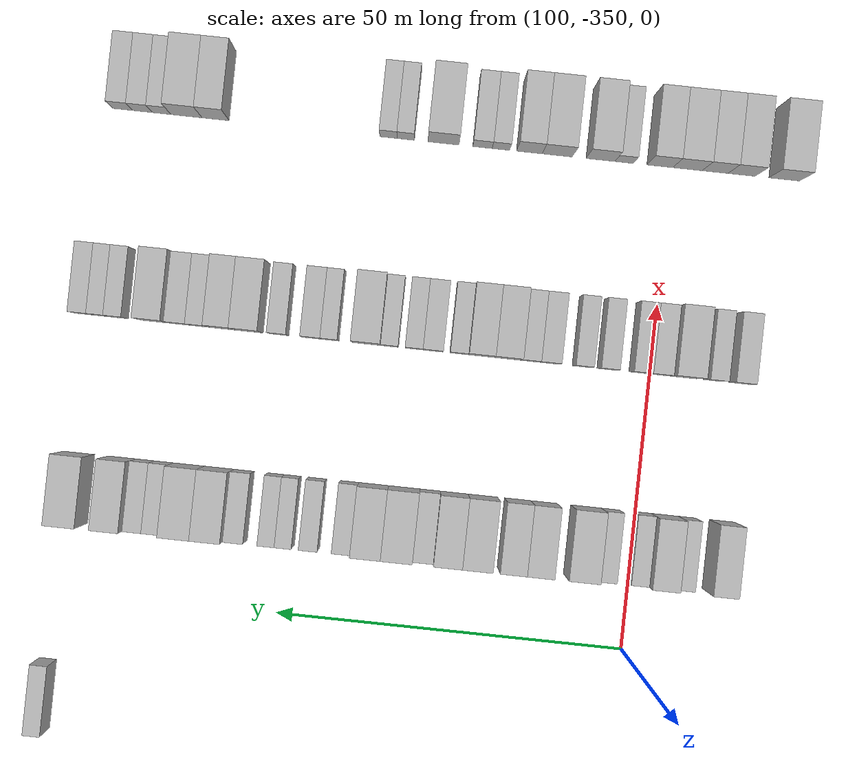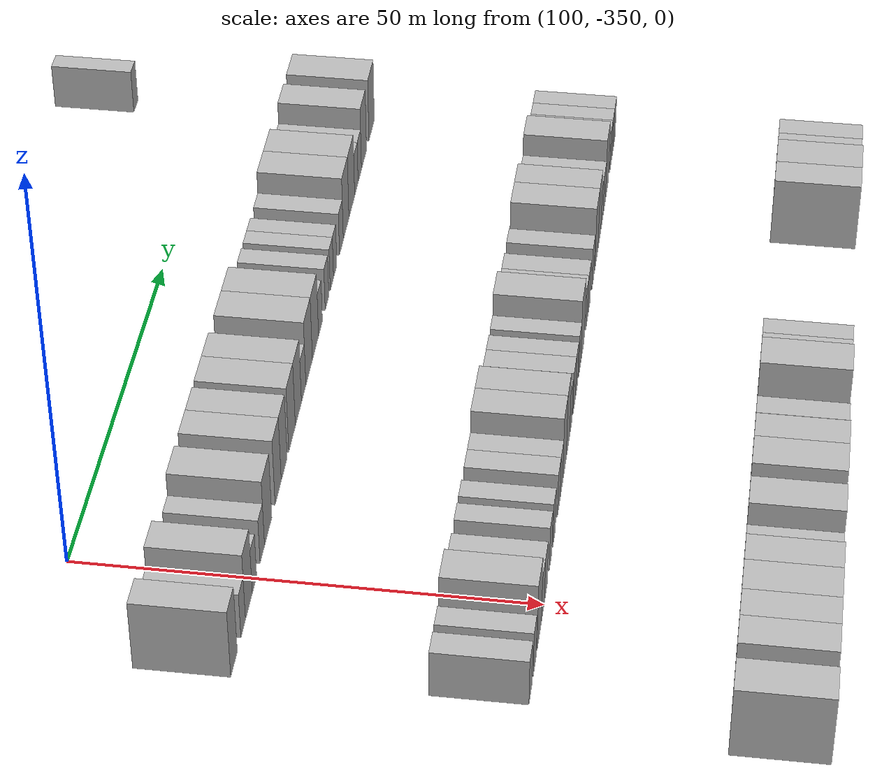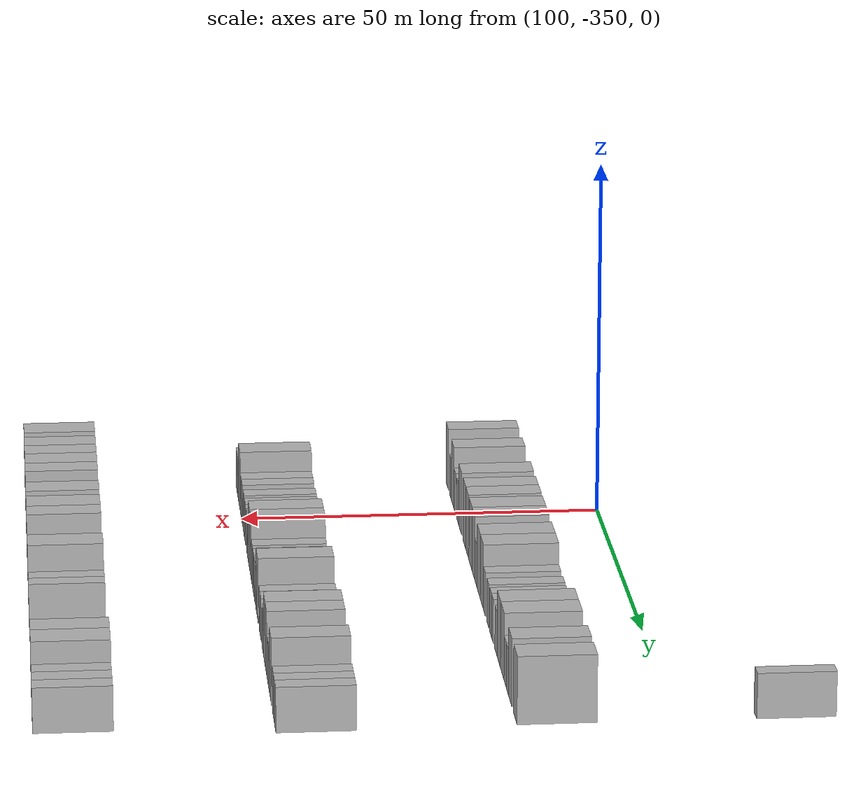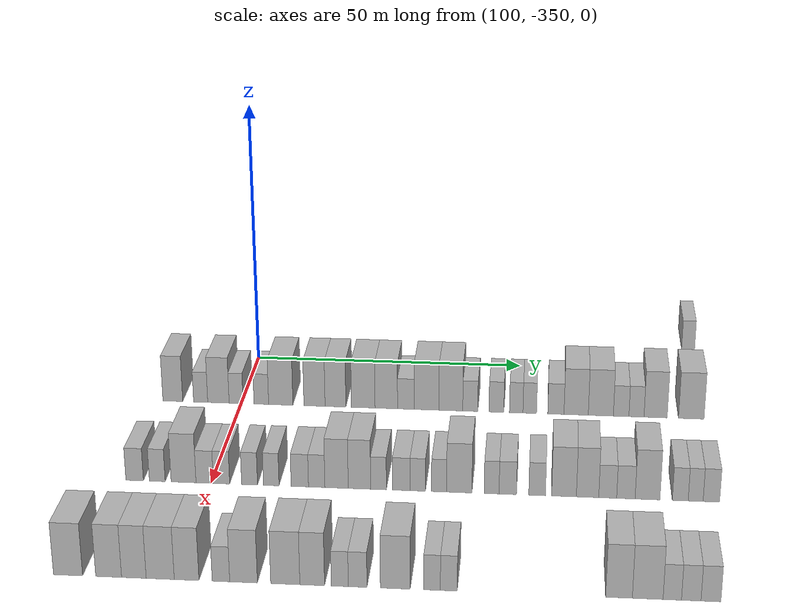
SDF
<sdf version="1.6">
 <world name="default">
  <model name="building_497">
   <static>1</static>
   <pose>85.0000 -267.8588 0 0.000000 0.000000 0.000000</pose>
   <link name="link">
    <pose>0 0 3.00 0 0 0</pose>
    <collision name="collision"><geometry><box><size>10.0000 2.4910 6.0000</size></box></geometry></collision>
    <visual name="visual">
     <cast_shadows>0</cast_shadows>
     <geometry><box><size>10.0000 2.4910 6.0000</size></box></geometry>
     <material>
      <script>
       <uri>model://HANNAS_wall/materials/scripts</uri>
       <uri>model://HANNAS_wall/materials/textures</uri>
       <name>vrc/HANNAS_wall</name>
      </script>
     </material>
    </visual>
   </link>
  </model>
  <model name="building_700">
   <static>1</static>
   <pose>115.0000 -362.5337 0 0.000000 0.000000 0.000000</pose>
   <link name="link">
    <pose>0 0 4.50 0 0 0</pose>
    <collision name="collision"><geometry><box><size>10.0000 3.6309 9.0000</size></box></geometry></collision>
    <visual name="visual">
     <cast_shadows>0</cast_shadows>
     <geometry><box><size>10.0000 3.6309 9.0000</size></box></geometry>
     <material>
      <script>
       <uri>model://HANNAS_wall/materials/scripts</uri>
       <uri>model://HANNAS_wall/materials/textures</uri>
       <name>vrc/HANNAS_wall</name>
      </script>
     </material>
    </visual>
   </link>
  </model>
  <model name="building_701">
   <static>1</static>
   <pose>115.0000 -357.4269 0 0.000000 0.000000 0.000000</pose>
   <link name="link">
    <pose>0 0 3.00 0 0 0</pose>
    <collision name="collision"><geometry><box><size>10.0000 2.5826 6.0000</size></box></geometry></collision>
    <visual name="visual">
     <cast_shadows>0</cast_shadows>
     <geometry><box><size>10.0000 2.5826 6.0000</size></box></geometry>
     <material>
      <script>
       <uri>model://HANNAS_wall/materials/scripts</uri>
       <uri>model://HANNAS_wall/materials/textures</uri>
       <name>vrc/HANNAS_wall</name>
      </script>
     </material>
    </visual>
   </link>
  </model>
  <model name="building_702">
   <static>1</static>
   <pose>115.0000 -354.1775 0 0.000000 0.000000 0.000000</pose>
   <link name="link">
    <pose>0 0 4.50 0 0 0</pose>
    <collision name="collision"><geometry><box><size>10.0000 3.9162 9.0000</size></box></geometry></collision>
    <visual name="visual">
     <cast_shadows>0</cast_shadows>
     <geometry><box><size>10.0000 3.9162 9.0000</size></box></geometry>
     <material>
      <script>
       <uri>model://HANNAS_wall/materials/scripts</uri>
       <uri>model://HANNAS_wall/materials/textures</uri>
       <name>vrc/HANNAS_wall</name>
      </script>
     </material>
    </visual>
   </link>
  </model>
  <model name="building_703">
   <static>1</static>
   <pose>115.0000 -350.9429 0 0.000000 0.000000 0.000000</pose>
   <link name="link">
    <pose>0 0 3.00 0 0 0</pose>
    <collision name="collision"><geometry><box><size>10.0000 2.5531 6.0000</size></box></geometry></collision>
    <visual name="visual">
     <cast_shadows>0</cast_shadows>
     <geometry><box><size>10.0000 2.5531 6.0000</size></box></geometry>
     <material>
      <script>
       <uri>model://HANNAS_wall/materials/scripts</uri>
       <uri>model://HANNAS_wall/materials/textures</uri>
       <name>vrc/HANNAS_wall</name>
      </script>
     </material>
    </visual>
   </link>
  </model>
  <model name="building_704">
   <static>1</static>
   <pose>115.0000 -346.3352 0 0.000000 0.000000 0.000000</pose>
   <link name="link">
    <pose>0 0 3.00 0 0 0</pose>
    <collision name="collision"><geometry><box><size>10.0000 2.6622 6.0000</size></box></geometry></collision>
    <visual name="visual">
     <cast_shadows>0</cast_shadows>
     <geometry><box><size>10.0000 2.6622 6.0000</size></box></geometry>
     <material>
      <script>
       <uri>model://HANNAS_wall/materials/scripts</uri>
       <uri>model://HANNAS_wall/materials/textures</uri>
       <name>vrc/HANNAS_wall</name>
      </script>
     </material>
    </visual>
   </link>
  </model>
  <model name="building_705">
   <static>1</static>
   <pose>115.0000 -342.7919 0 0.000000 0.000000 0.000000</pose>
   <link name="link">
    <pose>0 0 4.50 0 0 0</pose>
    <collision name="collision"><geometry><box><size>10.0000 4.4244 9.0000</size></box></geometry></collision>
    <visual name="visual">
     <cast_shadows>0</cast_shadows>
     <geometry><box><size>10.0000 4.4244 9.0000</size></box></geometry>
     <material>
      <script>
       <uri>model://HANNAS_wall/materials/scripts</uri>
       <uri>model://HANNAS_wall/materials/textures</uri>
       <name>vrc/HANNAS_wall</name>
      </script>
     </material>
    </visual>
   </link>
  </model>
  <model name="building_706">
   <static>1</static>
   <pose>115.0000 -336.6595 0 0.000000 0.000000 0.000000</pose>
   <link name="link">
    <pose>0 0 4.50 0 0 0</pose>
    <collision name="collision"><geometry><box><size>10.0000 3.8402 9.0000</size></box></geometry></collision>
    <visual name="visual">
     <cast_shadows>0</cast_shadows>
     <geometry><box><size>10.0000 3.8402 9.0000</size></box></geometry>
     <material>
      <script>
       <uri>model://HANNAS_wall/materials/scripts</uri>
       <uri>model://HANNAS_wall/materials/textures</uri>
       <name>vrc/HANNAS_wall</name>
      </script>
     </material>
    </visual>
   </link>
  </model>
  <model name="building_707">
   <static>1</static>
   <pose>115.0000 -332.8523 0 0.000000 0.000000 0.000000</pose>
   <link name="link">
    <pose>0 0 4.50 0 0 0</pose>
    <collision name="collision"><geometry><box><size>10.0000 3.7743 9.0000</size></box></geometry></collision>
    <visual name="visual">
     <cast_shadows>0</cast_shadows>
     <geometry><box><size>10.0000 3.7743 9.0000</size></box></geometry>
     <material>
      <script>
       <uri>model://HANNAS_wall/materials/scripts</uri>
       <uri>model://HANNAS_wall/materials/textures</uri>
       <name>vrc/HANNAS_wall</name>
      </script>
     </material>
    </visual>
   </link>
  </model>
  <model name="building_708">
   <static>1</static>
   <pose>115.0000 -327.8278 0 0.000000 0.000000 0.000000</pose>
   <link name="link">
    <pose>0 0 4.50 0 0 0</pose>
    <collision name="collision"><geometry><box><size>10.0000 4.2747 9.0000</size></box></geometry></collision>
    <visual name="visual">
     <cast_shadows>0</cast_shadows>
     <geometry><box><size>10.0000 4.2747 9.0000</size></box></geometry>
     <material>
      <script>
       <uri>model://HANNAS_wall/materials/scripts</uri>
       <uri>model://HANNAS_wall/materials/textures</uri>
       <name>vrc/HANNAS_wall</name>
      </script>
     </material>
    </visual>
   </link>
  </model>
  <model name="building_709">
   <static>1</static>
   <pose>115.0000 -323.6613 0 0.000000 0.000000 0.000000</pose>
   <link name="link">
    <pose>0 0 4.50 0 0 0</pose>
    <collision name="collision"><geometry><box><size>10.0000 4.0583 9.0000</size></box></geometry></collision>
    <visual name="visual">
     <cast_shadows>0</cast_shadows>
     <geometry><box><size>10.0000 4.0583 9.0000</size></box></geometry>
     <material>
      <script>
       <uri>model://HANNAS_wall/materials/scripts</uri>
       <uri>model://HANNAS_wall/materials/textures</uri>
       <name>vrc/HANNAS_wall</name>
      </script>
     </material>
    </visual>
   </link>
  </model>
  <model name="building_710">
   <static>1</static>
   <pose>115.0000 -320.1478 0 0.000000 0.000000 0.000000</pose>
   <link name="link">
    <pose>0 0 3.00 0 0 0</pose>
    <collision name="collision"><geometry><box><size>10.0000 2.9687 6.0000</size></box></geometry></collision>
    <visual name="visual">
     <cast_shadows>0</cast_shadows>
     <geometry><box><size>10.0000 2.9687 6.0000</size></box></geometry>
     <material>
      <script>
       <uri>model://HANNAS_wall/materials/scripts</uri>
       <uri>model://HANNAS_wall/materials/textures</uri>
       <name>vrc/HANNAS_wall</name>
      </script>
     </material>
    </visual>
   </link>
  </model>
  <model name="building_711">
   <static>1</static>
   <pose>115.0000 -316.4246 0 0.000000 0.000000 0.000000</pose>
   <link name="link">
    <pose>0 0 4.50 0 0 0</pose>
    <collision name="collision"><geometry><box><size>10.0000 4.4778 9.0000</size></box></geometry></collision>
    <visual name="visual">
     <cast_shadows>0</cast_shadows>
     <geometry><box><size>10.0000 4.4778 9.0000</size></box></geometry>
     <material>
      <script>
       <uri>model://HANNAS_wall/materials/scripts</uri>
       <uri>model://HANNAS_wall/materials/textures</uri>
       <name>vrc/HANNAS_wall</name>
      </script>
     </material>
    </visual>
   </link>
  </model>
  <model name="building_712">
   <static>1</static>
   <pose>115.0000 -312.0358 0 0.000000 0.000000 0.000000</pose>
   <link name="link">
    <pose>0 0 4.50 0 0 0</pose>
    <collision name="collision"><geometry><box><size>10.0000 4.2998 9.0000</size></box></geometry></collision>
    <visual name="visual">
     <cast_shadows>0</cast_shadows>
     <geometry><box><size>10.0000 4.2998 9.0000</size></box></geometry>
     <material>
      <script>
       <uri>model://HANNAS_wall/materials/scripts</uri>
       <uri>model://HANNAS_wall/materials/textures</uri>
       <name>vrc/HANNAS_wall</name>
      </script>
     </material>
    </visual>
   </link>
  </model>
  <model name="building_713">
   <static>1</static>
   <pose>115.0000 -308.5338 0 0.000000 0.000000 0.000000</pose>
   <link name="link">
    <pose>0 0 3.00 0 0 0</pose>
    <collision name="collision"><geometry><box><size>10.0000 2.7042 6.0000</size></box></geometry></collision>
    <visual name="visual">
     <cast_shadows>0</cast_shadows>
     <geometry><box><size>10.0000 2.7042 6.0000</size></box></geometry>
     <material>
      <script>
       <uri>model://HANNAS_wall/materials/scripts</uri>
       <uri>model://HANNAS_wall/materials/textures</uri>
       <name>vrc/HANNAS_wall</name>
      </script>
     </material>
    </visual>
   </link>
  </model>
  <model name="building_714">
   <static>1</static>
   <pose>115.0000 -303.8500 0 0.000000 0.000000 0.000000</pose>
   <link name="link">
    <pose>0 0 3.00 0 0 0</pose>
    <collision name="collision"><geometry><box><size>10.0000 2.6634 6.0000</size></box></geometry></collision>
    <visual name="visual">
     <cast_shadows>0</cast_shadows>
     <geometry><box><size>10.0000 2.6634 6.0000</size></box></geometry>
     <material>
      <script>
       <uri>model://HANNAS_wall/materials/scripts</uri>
       <uri>model://HANNAS_wall/materials/textures</uri>
       <name>vrc/HANNAS_wall</name>
      </script>
     </material>
    </visual>
   </link>
  </model>
  <model name="building_715">
   <static>1</static>
   <pose>115.0000 -300.3107 0 0.000000 0.000000 0.000000</pose>
   <link name="link">
    <pose>0 0 3.00 0 0 0</pose>
    <collision name="collision"><geometry><box><size>10.0000 2.4151 6.0000</size></box></geometry></collision>
    <visual name="visual">
     <cast_shadows>0</cast_shadows>
     <geometry><box><size>10.0000 2.4151 6.0000</size></box></geometry>
     <material>
      <script>
       <uri>model://HANNAS_wall/materials/scripts</uri>
       <uri>model://HANNAS_wall/materials/textures</uri>
       <name>vrc/HANNAS_wall</name>
      </script>
     </material>
    </visual>
   </link>
  </model>
  <model name="building_716">
   <static>1</static>
   <pose>115.0000 -297.8866 0 0.000000 0.000000 0.000000</pose>
   <link name="link">
    <pose>0 0 3.00 0 0 0</pose>
    <collision name="collision"><geometry><box><size>10.0000 2.4331 6.0000</size></box></geometry></collision>
    <visual name="visual">
     <cast_shadows>0</cast_shadows>
     <geometry><box><size>10.0000 2.4331 6.0000</size></box></geometry>
     <material>
      <script>
       <uri>model://HANNAS_wall/materials/scripts</uri>
       <uri>model://HANNAS_wall/materials/textures</uri>
       <name>vrc/HANNAS_wall</name>
      </script>
     </material>
    </visual>
   </link>
  </model>
  <model name="building_717">
   <static>1</static>
   <pose>115.0000 -293.2284 0 0.000000 0.000000 0.000000</pose>
   <link name="link">
    <pose>0 0 3.00 0 0 0</pose>
    <collision name="collision"><geometry><box><size>10.0000 2.8833 6.0000</size></box></geometry></collision>
    <visual name="visual">
     <cast_shadows>0</cast_shadows>
     <geometry><box><size>10.0000 2.8833 6.0000</size></box></geometry>
     <material>
      <script>
       <uri>model://HANNAS_wall/materials/scripts</uri>
       <uri>model://HANNAS_wall/materials/textures</uri>
       <name>vrc/HANNAS_wall</name>
      </script>
     </material>
    </visual>
   </link>
  </model>
  <model name="building_718">
   <static>1</static>
   <pose>115.0000 -289.6238 0 0.000000 0.000000 0.000000</pose>
   <link name="link">
    <pose>0 0 4.50 0 0 0</pose>
    <collision name="collision"><geometry><box><size>10.0000 4.3260 9.0000</size></box></geometry></collision>
    <visual name="visual">
     <cast_shadows>0</cast_shadows>
     <geometry><box><size>10.0000 4.3260 9.0000</size></box></geometry>
     <material>
      <script>
       <uri>model://HANNAS_wall/materials/scripts</uri>
       <uri>model://HANNAS_wall/materials/textures</uri>
       <name>vrc/HANNAS_wall</name>
      </script>
     </material>
    </visual>
   </link>
  </model>
  <model name="building_719">
   <static>1</static>
   <pose>115.0000 -285.2322 0 0.000000 0.000000 0.000000</pose>
   <link name="link">
    <pose>0 0 4.50 0 0 0</pose>
    <collision name="collision"><geometry><box><size>10.0000 4.4571 9.0000</size></box></geometry></collision>
    <visual name="visual">
     <cast_shadows>0</cast_shadows>
     <geometry><box><size>10.0000 4.4571 9.0000</size></box></geometry>
     <material>
      <script>
       <uri>model://HANNAS_wall/materials/scripts</uri>
       <uri>model://HANNAS_wall/materials/textures</uri>
       <name>vrc/HANNAS_wall</name>
      </script>
     </material>
    </visual>
   </link>
  </model>
  <model name="building_720">
   <static>1</static>
   <pose>115.0000 -281.6247 0 0.000000 0.000000 0.000000</pose>
   <link name="link">
    <pose>0 0 3.00 0 0 0</pose>
    <collision name="collision"><geometry><box><size>10.0000 2.7579 6.0000</size></box></geometry></collision>
    <visual name="visual">
     <cast_shadows>0</cast_shadows>
     <geometry><box><size>10.0000 2.7579 6.0000</size></box></geometry>
     <material>
      <script>
       <uri>model://HANNAS_wall/materials/scripts</uri>
       <uri>model://HANNAS_wall/materials/textures</uri>
       <name>vrc/HANNAS_wall</name>
      </script>
     </material>
    </visual>
   </link>
  </model>
  <model name="building_721">
   <static>1</static>
   <pose>115.0000 -278.9082 0 0.000000 0.000000 0.000000</pose>
   <link name="link">
    <pose>0 0 3.00 0 0 0</pose>
    <collision name="collision"><geometry><box><size>10.0000 2.6752 6.0000</size></box></geometry></collision>
    <visual name="visual">
     <cast_shadows>0</cast_shadows>
     <geometry><box><size>10.0000 2.6752 6.0000</size></box></geometry>
     <material>
      <script>
       <uri>model://HANNAS_wall/materials/scripts</uri>
       <uri>model://HANNAS_wall/materials/textures</uri>
       <name>vrc/HANNAS_wall</name>
      </script>
     </material>
    </visual>
   </link>
  </model>
  <model name="building_722">
   <static>1</static>
   <pose>115.0000 -275.5221 0 0.000000 0.000000 0.000000</pose>
   <link name="link">
    <pose>0 0 4.50 0 0 0</pose>
    <collision name="collision"><geometry><box><size>10.0000 4.0969 9.0000</size></box></geometry></collision>
    <visual name="visual">
     <cast_shadows>0</cast_shadows>
     <geometry><box><size>10.0000 4.0969 9.0000</size></box></geometry>
     <material>
      <script>
       <uri>model://HANNAS_wall/materials/scripts</uri>
       <uri>model://HANNAS_wall/materials/textures</uri>
       <name>vrc/HANNAS_wall</name>
      </script>
     </material>
    </visual>
   </link>
  </model>
  <model name="building_723">
   <static>1</static>
   <pose>115.0000 -269.2240 0 0.000000 0.000000 0.000000</pose>
   <link name="link">
    <pose>0 0 4.50 0 0 0</pose>
    <collision name="collision"><geometry><box><size>10.0000 4.4993 9.0000</size></box></geometry></collision>
    <visual name="visual">
     <cast_shadows>0</cast_shadows>
     <geometry><box><size>10.0000 4.4993 9.0000</size></box></geometry>
     <material>
      <script>
       <uri>model://HANNAS_wall/materials/scripts</uri>
       <uri>model://HANNAS_wall/materials/textures</uri>
       <name>vrc/HANNAS_wall</name>
      </script>
     </material>
    </visual>
   </link>
  </model>
  <model name="building_935">
   <static>1</static>
   <pose>145.0000 -362.8498 0 0.000000 0.000000 0.000000</pose>
   <link name="link">
    <pose>0 0 3.00 0 0 0</pose>
    <collision name="collision"><geometry><box><size>10.0000 2.9435 6.0000</size></box></geometry></collision>
    <visual name="visual">
     <cast_shadows>0</cast_shadows>
     <geometry><box><size>10.0000 2.9435 6.0000</size></box></geometry>
     <material>
      <script>
       <uri>model://HANNAS_wall/materials/scripts</uri>
       <uri>model://HANNAS_wall/materials/textures</uri>
       <name>vrc/HANNAS_wall</name>
      </script>
     </material>
    </visual>
   </link>
  </model>
  <model name="building_936">
   <static>1</static>
   <pose>145.0000 -359.0494 0 0.000000 0.000000 0.000000</pose>
   <link name="link">
    <pose>0 0 3.00 0 0 0</pose>
    <collision name="collision"><geometry><box><size>10.0000 2.6575 6.0000</size></box></geometry></collision>
    <visual name="visual">
     <cast_shadows>0</cast_shadows>
     <geometry><box><size>10.0000 2.6575 6.0000</size></box></geometry>
     <material>
      <script>
       <uri>model://HANNAS_wall/materials/scripts</uri>
       <uri>model://HANNAS_wall/materials/textures</uri>
       <name>vrc/HANNAS_wall</name>
      </script>
     </material>
    </visual>
   </link>
  </model>
  <model name="building_937">
   <static>1</static>
   <pose>145.0000 -354.6361 0 0.000000 0.000000 0.000000</pose>
   <link name="link">
    <pose>0 0 4.50 0 0 0</pose>
    <collision name="collision"><geometry><box><size>10.0000 4.1690 9.0000</size></box></geometry></collision>
    <visual name="visual">
     <cast_shadows>0</cast_shadows>
     <geometry><box><size>10.0000 4.1690 9.0000</size></box></geometry>
     <material>
      <script>
       <uri>model://HANNAS_wall/materials/scripts</uri>
       <uri>model://HANNAS_wall/materials/textures</uri>
       <name>vrc/HANNAS_wall</name>
      </script>
     </material>
    </visual>
   </link>
  </model>
  <model name="building_938">
   <static>1</static>
   <pose>145.0000 -351.1006 0 0.000000 0.000000 0.000000</pose>
   <link name="link">
    <pose>0 0 3.00 0 0 0</pose>
    <collision name="collision"><geometry><box><size>10.0000 2.9021 6.0000</size></box></geometry></collision>
    <visual name="visual">
     <cast_shadows>0</cast_shadows>
     <geometry><box><size>10.0000 2.9021 6.0000</size></box></geometry>
     <material>
      <script>
       <uri>model://HANNAS_wall/materials/scripts</uri>
       <uri>model://HANNAS_wall/materials/textures</uri>
       <name>vrc/HANNAS_wall</name>
      </script>
     </material>
    </visual>
   </link>
  </model>
  <model name="building_939">
   <static>1</static>
   <pose>145.0000 -348.2846 0 0.000000 0.000000 0.000000</pose>
   <link name="link">
    <pose>0 0 3.00 0 0 0</pose>
    <collision name="collision"><geometry><box><size>10.0000 2.7298 6.0000</size></box></geometry></collision>
    <visual name="visual">
     <cast_shadows>0</cast_shadows>
     <geometry><box><size>10.0000 2.7298 6.0000</size></box></geometry>
     <material>
      <script>
       <uri>model://HANNAS_wall/materials/scripts</uri>
       <uri>model://HANNAS_wall/materials/textures</uri>
       <name>vrc/HANNAS_wall</name>
      </script>
     </material>
    </visual>
   </link>
  </model>
  <model name="building_940">
   <static>1</static>
   <pose>145.0000 -343.5964 0 0.000000 0.000000 0.000000</pose>
   <link name="link">
    <pose>0 0 3.00 0 0 0</pose>
    <collision name="collision"><geometry><box><size>10.0000 2.6466 6.0000</size></box></geometry></collision>
    <visual name="visual">
     <cast_shadows>0</cast_shadows>
     <geometry><box><size>10.0000 2.6466 6.0000</size></box></geometry>
     <material>
      <script>
       <uri>model://HANNAS_wall/materials/scripts</uri>
       <uri>model://HANNAS_wall/materials/textures</uri>
       <name>vrc/HANNAS_wall</name>
      </script>
     </material>
    </visual>
   </link>
  </model>
  <model name="building_941">
   <static>1</static>
   <pose>145.0000 -339.9779 0 0.000000 0.000000 0.000000</pose>
   <link name="link">
    <pose>0 0 3.00 0 0 0</pose>
    <collision name="collision"><geometry><box><size>10.0000 2.5904 6.0000</size></box></geometry></collision>
    <visual name="visual">
     <cast_shadows>0</cast_shadows>
     <geometry><box><size>10.0000 2.5904 6.0000</size></box></geometry>
     <material>
      <script>
       <uri>model://HANNAS_wall/materials/scripts</uri>
       <uri>model://HANNAS_wall/materials/textures</uri>
       <name>vrc/HANNAS_wall</name>
      </script>
     </material>
    </visual>
   </link>
  </model>
  <model name="building_942">
   <static>1</static>
   <pose>145.0000 -335.2402 0 0.000000 0.000000 0.000000</pose>
   <link name="link">
    <pose>0 0 3.00 0 0 0</pose>
    <collision name="collision"><geometry><box><size>10.0000 2.8850 6.0000</size></box></geometry></collision>
    <visual name="visual">
     <cast_shadows>0</cast_shadows>
     <geometry><box><size>10.0000 2.8850 6.0000</size></box></geometry>
     <material>
      <script>
       <uri>model://HANNAS_wall/materials/scripts</uri>
       <uri>model://HANNAS_wall/materials/textures</uri>
       <name>vrc/HANNAS_wall</name>
      </script>
     </material>
    </visual>
   </link>
  </model>
  <model name="building_943">
   <static>1</static>
   <pose>145.0000 -332.4361 0 0.000000 0.000000 0.000000</pose>
   <link name="link">
    <pose>0 0 3.00 0 0 0</pose>
    <collision name="collision"><geometry><box><size>10.0000 2.7233 6.0000</size></box></geometry></collision>
    <visual name="visual">
     <cast_shadows>0</cast_shadows>
     <geometry><box><size>10.0000 2.7233 6.0000</size></box></geometry>
     <material>
      <script>
       <uri>model://HANNAS_wall/materials/scripts</uri>
       <uri>model://HANNAS_wall/materials/textures</uri>
       <name>vrc/HANNAS_wall</name>
      </script>
     </material>
    </visual>
   </link>
  </model>
  <model name="building_944">
   <static>1</static>
   <pose>145.0000 -329.1429 0 0.000000 0.000000 0.000000</pose>
   <link name="link">
    <pose>0 0 4.50 0 0 0</pose>
    <collision name="collision"><geometry><box><size>10.0000 3.8632 9.0000</size></box></geometry></collision>
    <visual name="visual">
     <cast_shadows>0</cast_shadows>
     <geometry><box><size>10.0000 3.8632 9.0000</size></box></geometry>
     <material>
      <script>
       <uri>model://HANNAS_wall/materials/scripts</uri>
       <uri>model://HANNAS_wall/materials/textures</uri>
       <name>vrc/HANNAS_wall</name>
      </script>
     </material>
    </visual>
   </link>
  </model>
  <model name="building_945">
   <static>1</static>
   <pose>145.0000 -325.3566 0 0.000000 0.000000 0.000000</pose>
   <link name="link">
    <pose>0 0 4.50 0 0 0</pose>
    <collision name="collision"><geometry><box><size>10.0000 3.7093 9.0000</size></box></geometry></collision>
    <visual name="visual">
     <cast_shadows>0</cast_shadows>
     <geometry><box><size>10.0000 3.7093 9.0000</size></box></geometry>
     <material>
      <script>
       <uri>model://HANNAS_wall/materials/scripts</uri>
       <uri>model://HANNAS_wall/materials/textures</uri>
       <name>vrc/HANNAS_wall</name>
      </script>
     </material>
    </visual>
   </link>
  </model>
  <model name="building_946">
   <static>1</static>
   <pose>145.0000 -322.2053 0 0.000000 0.000000 0.000000</pose>
   <link name="link">
    <pose>0 0 3.00 0 0 0</pose>
    <collision name="collision"><geometry><box><size>10.0000 2.5933 6.0000</size></box></geometry></collision>
    <visual name="visual">
     <cast_shadows>0</cast_shadows>
     <geometry><box><size>10.0000 2.5933 6.0000</size></box></geometry>
     <material>
      <script>
       <uri>model://HANNAS_wall/materials/scripts</uri>
       <uri>model://HANNAS_wall/materials/textures</uri>
       <name>vrc/HANNAS_wall</name>
      </script>
     </material>
    </visual>
   </link>
  </model>
  <model name="building_947">
   <static>1</static>
   <pose>145.0000 -318.4656 0 0.000000 0.000000 0.000000</pose>
   <link name="link">
    <pose>0 0 3.00 0 0 0</pose>
    <collision name="collision"><geometry><box><size>10.0000 2.8861 6.0000</size></box></geometry></collision>
    <visual name="visual">
     <cast_shadows>0</cast_shadows>
     <geometry><box><size>10.0000 2.8861 6.0000</size></box></geometry>
     <material>
      <script>
       <uri>model://HANNAS_wall/materials/scripts</uri>
       <uri>model://HANNAS_wall/materials/textures</uri>
       <name>vrc/HANNAS_wall</name>
      </script>
     </material>
    </visual>
   </link>
  </model>
  <model name="building_948">
   <static>1</static>
   <pose>145.0000 -315.7469 0 0.000000 0.000000 0.000000</pose>
   <link name="link">
    <pose>0 0 3.00 0 0 0</pose>
    <collision name="collision"><geometry><box><size>10.0000 2.5512 6.0000</size></box></geometry></collision>
    <visual name="visual">
     <cast_shadows>0</cast_shadows>
     <geometry><box><size>10.0000 2.5512 6.0000</size></box></geometry>
     <material>
      <script>
       <uri>model://HANNAS_wall/materials/scripts</uri>
       <uri>model://HANNAS_wall/materials/textures</uri>
       <name>vrc/HANNAS_wall</name>
      </script>
     </material>
    </visual>
   </link>
  </model>
  <model name="building_949">
   <static>1</static>
   <pose>145.0000 -312.2280 0 0.000000 0.000000 0.000000</pose>
   <link name="link">
    <pose>0 0 3.00 0 0 0</pose>
    <collision name="collision"><geometry><box><size>10.0000 2.4867 6.0000</size></box></geometry></collision>
    <visual name="visual">
     <cast_shadows>0</cast_shadows>
     <geometry><box><size>10.0000 2.4867 6.0000</size></box></geometry>
     <material>
      <script>
       <uri>model://HANNAS_wall/materials/scripts</uri>
       <uri>model://HANNAS_wall/materials/textures</uri>
       <name>vrc/HANNAS_wall</name>
      </script>
     </material>
    </visual>
   </link>
  </model>
  <model name="building_950">
   <static>1</static>
   <pose>145.0000 -308.9067 0 0.000000 0.000000 0.000000</pose>
   <link name="link">
    <pose>0 0 4.50 0 0 0</pose>
    <collision name="collision"><geometry><box><size>10.0000 4.1557 9.0000</size></box></geometry></collision>
    <visual name="visual">
     <cast_shadows>0</cast_shadows>
     <geometry><box><size>10.0000 4.1557 9.0000</size></box></geometry>
     <material>
      <script>
       <uri>model://HANNAS_wall/materials/scripts</uri>
       <uri>model://HANNAS_wall/materials/textures</uri>
       <name>vrc/HANNAS_wall</name>
      </script>
     </material>
    </visual>
   </link>
  </model>
  <model name="building_951">
   <static>1</static>
   <pose>145.0000 -303.6115 0 0.000000 0.000000 0.000000</pose>
   <link name="link">
    <pose>0 0 3.00 0 0 0</pose>
    <collision name="collision"><geometry><box><size>10.0000 2.4347 6.0000</size></box></geometry></collision>
    <visual name="visual">
     <cast_shadows>0</cast_shadows>
     <geometry><box><size>10.0000 2.4347 6.0000</size></box></geometry>
     <material>
      <script>
       <uri>model://HANNAS_wall/materials/scripts</uri>
       <uri>model://HANNAS_wall/materials/textures</uri>
       <name>vrc/HANNAS_wall</name>
      </script>
     </material>
    </visual>
   </link>
  </model>
  <model name="building_952">
   <static>1</static>
   <pose>145.0000 -300.9688 0 0.000000 0.000000 0.000000</pose>
   <link name="link">
    <pose>0 0 3.00 0 0 0</pose>
    <collision name="collision"><geometry><box><size>10.0000 2.8509 6.0000</size></box></geometry></collision>
    <visual name="visual">
     <cast_shadows>0</cast_shadows>
     <geometry><box><size>10.0000 2.8509 6.0000</size></box></geometry>
     <material>
      <script>
       <uri>model://HANNAS_wall/materials/scripts</uri>
       <uri>model://HANNAS_wall/materials/textures</uri>
       <name>vrc/HANNAS_wall</name>
      </script>
     </material>
    </visual>
   </link>
  </model>
  <model name="building_953">
   <static>1</static>
   <pose>145.0000 -296.1802 0 0.000000 0.000000 0.000000</pose>
   <link name="link">
    <pose>0 0 3.00 0 0 0</pose>
    <collision name="collision"><geometry><box><size>10.0000 2.7262 6.0000</size></box></geometry></collision>
    <visual name="visual">
     <cast_shadows>0</cast_shadows>
     <geometry><box><size>10.0000 2.7262 6.0000</size></box></geometry>
     <material>
      <script>
       <uri>model://HANNAS_wall/materials/scripts</uri>
       <uri>model://HANNAS_wall/materials/textures</uri>
       <name>vrc/HANNAS_wall</name>
      </script>
     </material>
    </visual>
   </link>
  </model>
  <model name="building_954">
   <static>1</static>
   <pose>145.0000 -291.8023 0 0.000000 0.000000 0.000000</pose>
   <link name="link">
    <pose>0 0 4.50 0 0 0</pose>
    <collision name="collision"><geometry><box><size>10.0000 4.0296 9.0000</size></box></geometry></collision>
    <visual name="visual">
     <cast_shadows>0</cast_shadows>
     <geometry><box><size>10.0000 4.0296 9.0000</size></box></geometry>
     <material>
      <script>
       <uri>model://HANNAS_wall/materials/scripts</uri>
       <uri>model://HANNAS_wall/materials/textures</uri>
       <name>vrc/HANNAS_wall</name>
      </script>
     </material>
    </visual>
   </link>
  </model>
  <model name="building_955">
   <static>1</static>
   <pose>145.0000 -287.9712 0 0.000000 0.000000 0.000000</pose>
   <link name="link">
    <pose>0 0 4.50 0 0 0</pose>
    <collision name="collision"><geometry><box><size>10.0000 3.6326 9.0000</size></box></geometry></collision>
    <visual name="visual">
     <cast_shadows>0</cast_shadows>
     <geometry><box><size>10.0000 3.6326 9.0000</size></box></geometry>
     <material>
      <script>
       <uri>model://HANNAS_wall/materials/scripts</uri>
       <uri>model://HANNAS_wall/materials/textures</uri>
       <name>vrc/HANNAS_wall</name>
      </script>
     </material>
    </visual>
   </link>
  </model>
  <model name="building_956">
   <static>1</static>
   <pose>145.0000 -284.7009 0 0.000000 0.000000 0.000000</pose>
   <link name="link">
    <pose>0 0 3.00 0 0 0</pose>
    <collision name="collision"><geometry><box><size>10.0000 2.9080 6.0000</size></box></geometry></collision>
    <visual name="visual">
     <cast_shadows>0</cast_shadows>
     <geometry><box><size>10.0000 2.9080 6.0000</size></box></geometry>
     <material>
      <script>
       <uri>model://HANNAS_wall/materials/scripts</uri>
       <uri>model://HANNAS_wall/materials/textures</uri>
       <name>vrc/HANNAS_wall</name>
      </script>
     </material>
    </visual>
   </link>
  </model>
  <model name="building_957">
   <static>1</static>
   <pose>145.0000 -281.7545 0 0.000000 0.000000 0.000000</pose>
   <link name="link">
    <pose>0 0 3.00 0 0 0</pose>
    <collision name="collision"><geometry><box><size>10.0000 2.9848 6.0000</size></box></geometry></collision>
    <visual name="visual">
     <cast_shadows>0</cast_shadows>
     <geometry><box><size>10.0000 2.9848 6.0000</size></box></geometry>
     <material>
      <script>
       <uri>model://HANNAS_wall/materials/scripts</uri>
       <uri>model://HANNAS_wall/materials/textures</uri>
       <name>vrc/HANNAS_wall</name>
      </script>
     </material>
    </visual>
   </link>
  </model>
  <model name="building_958">
   <static>1</static>
   <pose>145.0000 -278.2548 0 0.000000 0.000000 0.000000</pose>
   <link name="link">
    <pose>0 0 4.50 0 0 0</pose>
    <collision name="collision"><geometry><box><size>10.0000 4.0145 9.0000</size></box></geometry></collision>
    <visual name="visual">
     <cast_shadows>0</cast_shadows>
     <geometry><box><size>10.0000 4.0145 9.0000</size></box></geometry>
     <material>
      <script>
       <uri>model://HANNAS_wall/materials/scripts</uri>
       <uri>model://HANNAS_wall/materials/textures</uri>
       <name>vrc/HANNAS_wall</name>
      </script>
     </material>
    </visual>
   </link>
  </model>
  <model name="building_959">
   <static>1</static>
   <pose>145.0000 -272.9694 0 0.000000 0.000000 0.000000</pose>
   <link name="link">
    <pose>0 0 3.00 0 0 0</pose>
    <collision name="collision"><geometry><box><size>10.0000 2.5564 6.0000</size></box></geometry></collision>
    <visual name="visual">
     <cast_shadows>0</cast_shadows>
     <geometry><box><size>10.0000 2.5564 6.0000</size></box></geometry>
     <material>
      <script>
       <uri>model://HANNAS_wall/materials/scripts</uri>
       <uri>model://HANNAS_wall/materials/textures</uri>
       <name>vrc/HANNAS_wall</name>
      </script>
     </material>
    </visual>
   </link>
  </model>
  <model name="building_960">
   <static>1</static>
   <pose>145.0000 -270.4874 0 0.000000 0.000000 0.000000</pose>
   <link name="link">
    <pose>0 0 3.00 0 0 0</pose>
    <collision name="collision"><geometry><box><size>10.0000 2.4077 6.0000</size></box></geometry></collision>
    <visual name="visual">
     <cast_shadows>0</cast_shadows>
     <geometry><box><size>10.0000 2.4077 6.0000</size></box></geometry>
     <material>
      <script>
       <uri>model://HANNAS_wall/materials/scripts</uri>
       <uri>model://HANNAS_wall/materials/textures</uri>
       <name>vrc/HANNAS_wall</name>
      </script>
     </material>
    </visual>
   </link>
  </model>
  <model name="building_961">
   <static>1</static>
   <pose>145.0000 -267.9578 0 0.000000 0.000000 0.000000</pose>
   <link name="link">
    <pose>0 0 3.00 0 0 0</pose>
    <collision name="collision"><geometry><box><size>10.0000 2.6514 6.0000</size></box></geometry></collision>
    <visual name="visual">
     <cast_shadows>0</cast_shadows>
     <geometry><box><size>10.0000 2.6514 6.0000</size></box></geometry>
     <material>
      <script>
       <uri>model://HANNAS_wall/materials/scripts</uri>
       <uri>model://HANNAS_wall/materials/textures</uri>
       <name>vrc/HANNAS_wall</name>
      </script>
     </material>
    </visual>
   </link>
  </model>
  <model name="building_1161">
   <static>1</static>
   <pose>175.0000 -366.3118 0 0.000000 0.000000 0.000000</pose>
   <link name="link">
    <pose>0 0 4.50 0 0 0</pose>
    <collision name="collision"><geometry><box><size>10.0000 4.4572 9.0000</size></box></geometry></collision>
    <visual name="visual">
     <cast_shadows>0</cast_shadows>
     <geometry><box><size>10.0000 4.4572 9.0000</size></box></geometry>
     <material>
      <script>
       <uri>model://HANNAS_wall/materials/scripts</uri>
       <uri>model://HANNAS_wall/materials/textures</uri>
       <name>vrc/HANNAS_wall</name>
      </script>
     </material>
    </visual>
   </link>
  </model>
  <model name="building_1162">
   <static>1</static>
   <pose>175.0000 -360.1112 0 0.000000 0.000000 0.000000</pose>
   <link name="link">
    <pose>0 0 4.50 0 0 0</pose>
    <collision name="collision"><geometry><box><size>10.0000 3.9440 9.0000</size></box></geometry></collision>
    <visual name="visual">
     <cast_shadows>0</cast_shadows>
     <geometry><box><size>10.0000 3.9440 9.0000</size></box></geometry>
     <material>
      <script>
       <uri>model://HANNAS_wall/materials/scripts</uri>
       <uri>model://HANNAS_wall/materials/textures</uri>
       <name>vrc/HANNAS_wall</name>
      </script>
     </material>
    </visual>
   </link>
  </model>
  <model name="building_1163">
   <static>1</static>
   <pose>175.0000 -356.2638 0 0.000000 0.000000 0.000000</pose>
   <link name="link">
    <pose>0 0 4.50 0 0 0</pose>
    <collision name="collision"><geometry><box><size>10.0000 3.7509 9.0000</size></box></geometry></collision>
    <visual name="visual">
     <cast_shadows>0</cast_shadows>
     <geometry><box><size>10.0000 3.7509 9.0000</size></box></geometry>
     <material>
      <script>
       <uri>model://HANNAS_wall/materials/scripts</uri>
       <uri>model://HANNAS_wall/materials/textures</uri>
       <name>vrc/HANNAS_wall</name>
      </script>
     </material>
    </visual>
   </link>
  </model>
  <model name="building_1164">
   <static>1</static>
   <pose>175.0000 -352.2538 0 0.000000 0.000000 0.000000</pose>
   <link name="link">
    <pose>0 0 4.50 0 0 0</pose>
    <collision name="collision"><geometry><box><size>10.0000 4.2690 9.0000</size></box></geometry></collision>
    <visual name="visual">
     <cast_shadows>0</cast_shadows>
     <geometry><box><size>10.0000 4.2690 9.0000</size></box></geometry>
     <material>
      <script>
       <uri>model://HANNAS_wall/materials/scripts</uri>
       <uri>model://HANNAS_wall/materials/textures</uri>
       <name>vrc/HANNAS_wall</name>
      </script>
     </material>
    </visual>
   </link>
  </model>
  <model name="building_1165">
   <static>1</static>
   <pose>175.0000 -348.2421 0 0.000000 0.000000 0.000000</pose>
   <link name="link">
    <pose>0 0 4.50 0 0 0</pose>
    <collision name="collision"><geometry><box><size>10.0000 3.7545 9.0000</size></box></geometry></collision>
    <visual name="visual">
     <cast_shadows>0</cast_shadows>
     <geometry><box><size>10.0000 3.7545 9.0000</size></box></geometry>
     <material>
      <script>
       <uri>model://HANNAS_wall/materials/scripts</uri>
       <uri>model://HANNAS_wall/materials/textures</uri>
       <name>vrc/HANNAS_wall</name>
      </script>
     </material>
    </visual>
   </link>
  </model>
  <model name="building_1166">
   <static>1</static>
   <pose>175.0000 -343.0404 0 0.000000 0.000000 0.000000</pose>
   <link name="link">
    <pose>0 0 3.00 0 0 0</pose>
    <collision name="collision"><geometry><box><size>10.0000 2.6489 6.0000</size></box></geometry></collision>
    <visual name="visual">
     <cast_shadows>0</cast_shadows>
     <geometry><box><size>10.0000 2.6489 6.0000</size></box></geometry>
     <material>
      <script>
       <uri>model://HANNAS_wall/materials/scripts</uri>
       <uri>model://HANNAS_wall/materials/textures</uri>
       <name>vrc/HANNAS_wall</name>
      </script>
     </material>
    </visual>
   </link>
  </model>
  <model name="building_1167">
   <static>1</static>
   <pose>175.0000 -339.6215 0 0.000000 0.000000 0.000000</pose>
   <link name="link">
    <pose>0 0 4.50 0 0 0</pose>
    <collision name="collision"><geometry><box><size>10.0000 4.1889 9.0000</size></box></geometry></collision>
    <visual name="visual">
     <cast_shadows>0</cast_shadows>
     <geometry><box><size>10.0000 4.1889 9.0000</size></box></geometry>
     <material>
      <script>
       <uri>model://HANNAS_wall/materials/scripts</uri>
       <uri>model://HANNAS_wall/materials/textures</uri>
       <name>vrc/HANNAS_wall</name>
      </script>
     </material>
    </visual>
   </link>
  </model>
  <model name="building_1168">
   <static>1</static>
   <pose>175.0000 -333.3335 0 0.000000 0.000000 0.000000</pose>
   <link name="link">
    <pose>0 0 4.50 0 0 0</pose>
    <collision name="collision"><geometry><box><size>10.0000 4.3872 9.0000</size></box></geometry></collision>
    <visual name="visual">
     <cast_shadows>0</cast_shadows>
     <geometry><box><size>10.0000 4.3872 9.0000</size></box></geometry>
     <material>
      <script>
       <uri>model://HANNAS_wall/materials/scripts</uri>
       <uri>model://HANNAS_wall/materials/textures</uri>
       <name>vrc/HANNAS_wall</name>
      </script>
     </material>
    </visual>
   </link>
  </model>
  <model name="building_1169">
   <static>1</static>
   <pose>175.0000 -329.2813 0 0.000000 0.000000 0.000000</pose>
   <link name="link">
    <pose>0 0 4.50 0 0 0</pose>
    <collision name="collision"><geometry><box><size>10.0000 3.7172 9.0000</size></box></geometry></collision>
    <visual name="visual">
     <cast_shadows>0</cast_shadows>
     <geometry><box><size>10.0000 3.7172 9.0000</size></box></geometry>
     <material>
      <script>
       <uri>model://HANNAS_wall/materials/scripts</uri>
       <uri>model://HANNAS_wall/materials/textures</uri>
       <name>vrc/HANNAS_wall</name>
      </script>
     </material>
    </visual>
   </link>
  </model>
  <model name="building_1170">
   <static>1</static>
   <pose>175.0000 -325.1465 0 0.000000 0.000000 0.000000</pose>
   <link name="link">
    <pose>0 0 3.00 0 0 0</pose>
    <collision name="collision"><geometry><box><size>10.0000 2.5523 6.0000</size></box></geometry></collision>
    <visual name="visual">
     <cast_shadows>0</cast_shadows>
     <geometry><box><size>10.0000 2.5523 6.0000</size></box></geometry>
     <material>
      <script>
       <uri>model://HANNAS_wall/materials/scripts</uri>
       <uri>model://HANNAS_wall/materials/textures</uri>
       <name>vrc/HANNAS_wall</name>
      </script>
     </material>
    </visual>
   </link>
  </model>
  <model name="building_1171">
   <static>1</static>
   <pose>175.0000 -322.4698 0 0.000000 0.000000 0.000000</pose>
   <link name="link">
    <pose>0 0 3.00 0 0 0</pose>
    <collision name="collision"><geometry><box><size>10.0000 2.8013 6.0000</size></box></geometry></collision>
    <visual name="visual">
     <cast_shadows>0</cast_shadows>
     <geometry><box><size>10.0000 2.8013 6.0000</size></box></geometry>
     <material>
      <script>
       <uri>model://HANNAS_wall/materials/scripts</uri>
       <uri>model://HANNAS_wall/materials/textures</uri>
       <name>vrc/HANNAS_wall</name>
      </script>
     </material>
    </visual>
   </link>
  </model>
  <model name="building_1172">
   <static>1</static>
   <pose>175.0000 -316.8386 0 0.000000 0.000000 0.000000</pose>
   <link name="link">
    <pose>0 0 4.50 0 0 0</pose>
    <collision name="collision"><geometry><box><size>10.0000 4.4611 9.0000</size></box></geometry></collision>
    <visual name="visual">
     <cast_shadows>0</cast_shadows>
     <geometry><box><size>10.0000 4.4611 9.0000</size></box></geometry>
     <material>
      <script>
       <uri>model://HANNAS_wall/materials/scripts</uri>
       <uri>model://HANNAS_wall/materials/textures</uri>
       <name>vrc/HANNAS_wall</name>
      </script>
     </material>
    </visual>
   </link>
  </model>
  <model name="building_1173">
   <static>1</static>
   <pose>175.0000 -311.3664 0 0.000000 0.000000 0.000000</pose>
   <link name="link">
    <pose>0 0 3.00 0 0 0</pose>
    <collision name="collision"><geometry><box><size>10.0000 2.4834 6.0000</size></box></geometry></collision>
    <visual name="visual">
     <cast_shadows>0</cast_shadows>
     <geometry><box><size>10.0000 2.4834 6.0000</size></box></geometry>
     <material>
      <script>
       <uri>model://HANNAS_wall/materials/scripts</uri>
       <uri>model://HANNAS_wall/materials/textures</uri>
       <name>vrc/HANNAS_wall</name>
      </script>
     </material>
    </visual>
   </link>
  </model>
  <model name="building_1174">
   <static>1</static>
   <pose>175.0000 -308.8669 0 0.000000 0.000000 0.000000</pose>
   <link name="link">
    <pose>0 0 3.00 0 0 0</pose>
    <collision name="collision"><geometry><box><size>10.0000 2.5155 6.0000</size></box></geometry></collision>
    <visual name="visual">
     <cast_shadows>0</cast_shadows>
     <geometry><box><size>10.0000 2.5155 6.0000</size></box></geometry>
     <material>
      <script>
       <uri>model://HANNAS_wall/materials/scripts</uri>
       <uri>model://HANNAS_wall/materials/textures</uri>
       <name>vrc/HANNAS_wall</name>
      </script>
     </material>
    </visual>
   </link>
  </model>
  <model name="building_1175">
   <static>1</static>
   <pose>175.0000 -283.7378 0 0.000000 0.000000 0.000000</pose>
   <link name="link">
    <pose>0 0 4.50 0 0 0</pose>
    <collision name="collision"><geometry><box><size>10.0000 3.9143 9.0000</size></box></geometry></collision>
    <visual name="visual">
     <cast_shadows>0</cast_shadows>
     <geometry><box><size>10.0000 3.9143 9.0000</size></box></geometry>
     <material>
      <script>
       <uri>model://HANNAS_wall/materials/scripts</uri>
       <uri>model://HANNAS_wall/materials/textures</uri>
       <name>vrc/HANNAS_wall</name>
      </script>
     </material>
    </visual>
   </link>
  </model>
  <model name="building_1176">
   <static>1</static>
   <pose>175.0000 -279.5318 0 0.000000 0.000000 0.000000</pose>
   <link name="link">
    <pose>0 0 4.50 0 0 0</pose>
    <collision name="collision"><geometry><box><size>10.0000 4.4977 9.0000</size></box></geometry></collision>
    <visual name="visual">
     <cast_shadows>0</cast_shadows>
     <geometry><box><size>10.0000 4.4977 9.0000</size></box></geometry>
     <material>
      <script>
       <uri>model://HANNAS_wall/materials/scripts</uri>
       <uri>model://HANNAS_wall/materials/textures</uri>
       <name>vrc/HANNAS_wall</name>
      </script>
     </material>
    </visual>
   </link>
  </model>
  <model name="building_1177">
   <static>1</static>
   <pose>175.0000 -275.9382 0 0.000000 0.000000 0.000000</pose>
   <link name="link">
    <pose>0 0 3.00 0 0 0</pose>
    <collision name="collision"><geometry><box><size>10.0000 2.6897 6.0000</size></box></geometry></collision>
    <visual name="visual">
     <cast_shadows>0</cast_shadows>
     <geometry><box><size>10.0000 2.6897 6.0000</size></box></geometry>
     <material>
      <script>
       <uri>model://HANNAS_wall/materials/scripts</uri>
       <uri>model://HANNAS_wall/materials/textures</uri>
       <name>vrc/HANNAS_wall</name>
      </script>
     </material>
    </visual>
   </link>
  </model>
  <model name="building_1178">
   <static>1</static>
   <pose>175.0000 -273.1695 0 0.000000 0.000000 0.000000</pose>
   <link name="link">
    <pose>0 0 3.00 0 0 0</pose>
    <collision name="collision"><geometry><box><size>10.0000 2.8476 6.0000</size></box></geometry></collision>
    <visual name="visual">
     <cast_shadows>0</cast_shadows>
     <geometry><box><size>10.0000 2.8476 6.0000</size></box></geometry>
     <material>
      <script>
       <uri>model://HANNAS_wall/materials/scripts</uri>
       <uri>model://HANNAS_wall/materials/textures</uri>
       <name>vrc/HANNAS_wall</name>
      </script>
     </material>
    </visual>
   </link>
  </model>
  <model name="building_1179">
   <static>1</static>
   <pose>175.0000 -270.2991 0 0.000000 0.000000 0.000000</pose>
   <link name="link">
    <pose>0 0 3.00 0 0 0</pose>
    <collision name="collision"><geometry><box><size>10.0000 2.8933 6.0000</size></box></geometry></collision>
    <visual name="visual">
     <cast_shadows>0</cast_shadows>
     <geometry><box><size>10.0000 2.8933 6.0000</size></box></geometry>
     <material>
      <script>
       <uri>model://HANNAS_wall/materials/scripts</uri>
       <uri>model://HANNAS_wall/materials/textures</uri>
       <name>vrc/HANNAS_wall</name>
      </script>
     </material>
    </visual>
   </link>
  </model>
 </world>
</sdf>
